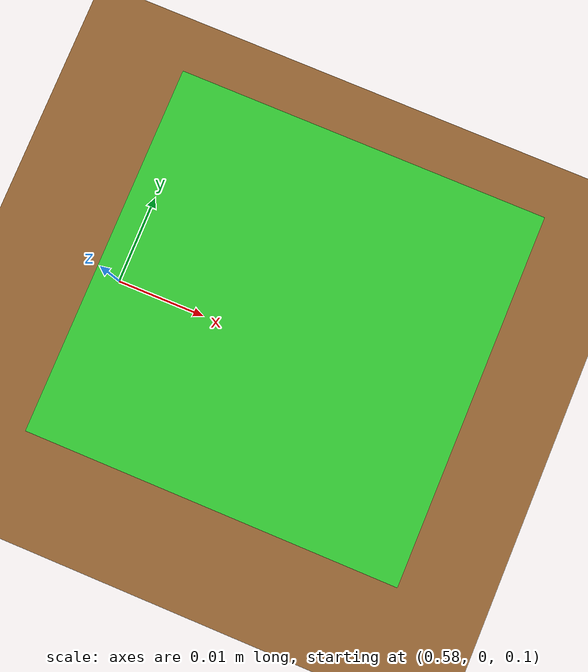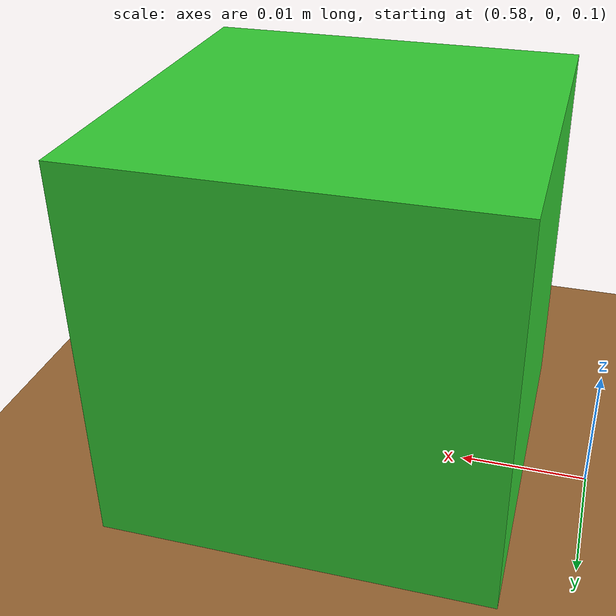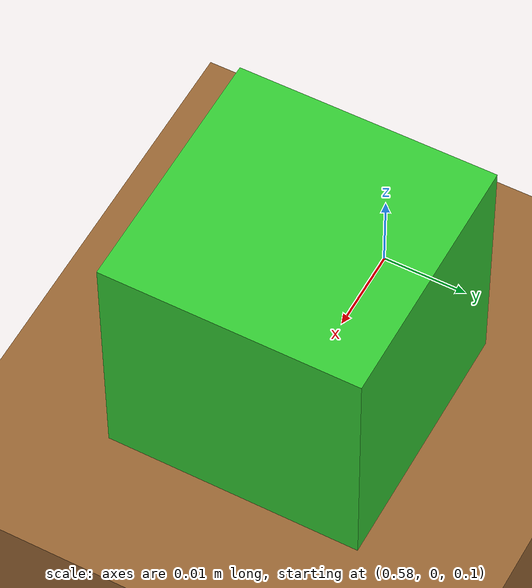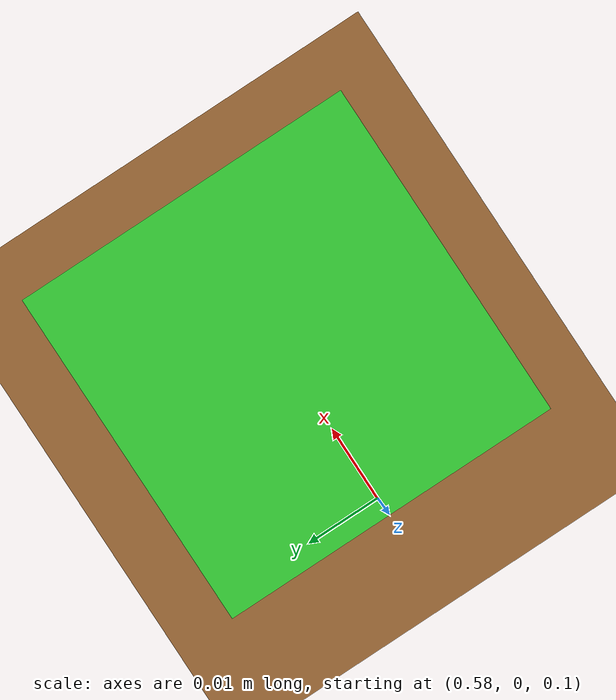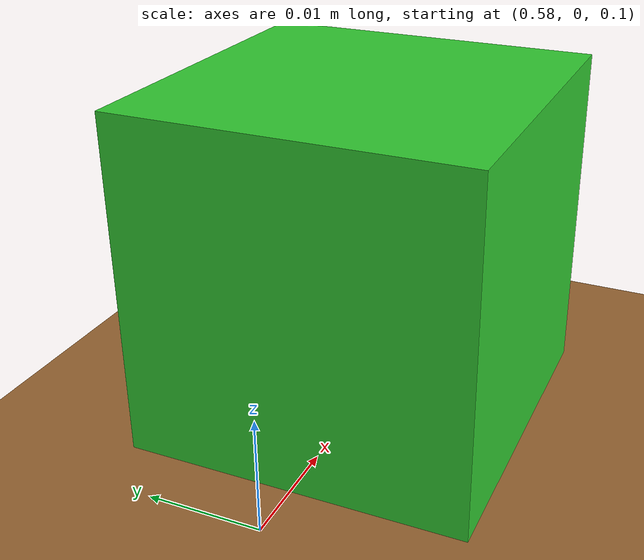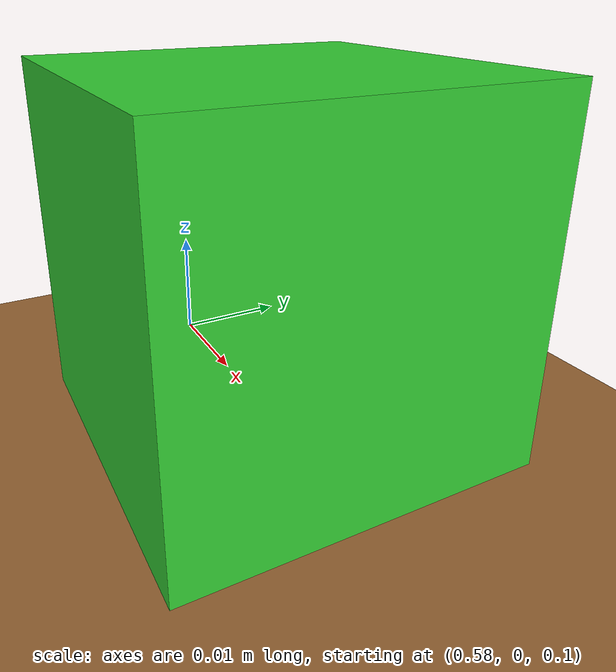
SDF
<?xml version="1.0" ?>
<sdf version="1.10">
  <world name="grasp_world">
    <!-- 物理引擎：bullet-featherstone（曾按"支持 mimic"的预期选用；实测当前软件栈无引擎可用 mimic，见 docs/夹爪单指运动问题修复记录.md，引擎保留即可）-->
    <physics name="1ms" type="bullet-featherstone">
      <max_step_size>0.001</max_step_size>
      <real_time_factor>1.0</real_time_factor>
    </physics>

    <gui fullscreen="0">
      <camera name="user_camera">
        <pose>2.0 -2.0 1.5 0 0.5 2.3</pose>
        <view_controller>Orbit</view_controller>
      </camera>
    </gui>

    <light type="directional" name="sun">
      <cast_shadows>true</cast_shadows>
      <pose>0 0 10 0 0 0</pose>
      <diffuse>0.8 0.8 0.8 1</diffuse>
      <specular>0.2 0.2 0.2 1</specular>
      <direction>-0.5 0.1 -0.9</direction>
    </light>

    <model name="ground_plane">
      <static>true</static>
      <link name="link">
        <collision name="collision">
          <geometry>
            <plane>
              <normal>0 0 1</normal>
              <size>10 10</size>
            </plane>
          </geometry>
        </collision>
        <visual name="visual">
          <geometry>
            <plane>
              <normal>0 0 1</normal>
              <size>10 10</size>
            </plane>
          </geometry>
          <material>
            <ambient>0.3 0.3 0.3 1</ambient>
            <diffuse>0.7 0.7 0.7 1</diffuse>
          </material>
        </visual>
      </link>
    </model>
    <!-- 桌面 -->
    <model name="table">
      <static>true</static>
      <pose>0.5 0 0.05 0 0 0</pose>
      <link name="link">
        <collision name="collision">
          <geometry>
            <box>
              <size>2.0 2.0 0.1</size>
            </box>
          </geometry>
        </collision>
        <visual name="visual">
          <geometry>
            <box>
              <size>2.0 2.0 0.1</size>
            </box>
          </geometry>
          <material>
            <ambient>0.6 0.4 0.2 1</ambient>
            <diffuse>0.6 0.4 0.2 1</diffuse>
          </material>
        </visual>
      </link>
    </model>
    <!-- 抓取物体 物体 z = 桌面中心 z + 桌面半厚 + 物体半高-->
    <model name="grasp_object">
      <static>false</static>
      <pose>0.6 0 0.115 0 0 0</pose>
      <link name="link">
        <inertial>
          <mass>0.02</mass>
          <inertia>
            <ixx>0.000003</ixx>
            <iyy>0.000003</iyy>
            <izz>0.000003</izz>
            <ixy>0</ixy>
            <ixz>0</ixz>
            <iyz>0</iyz>
          </inertia>
        </inertial>
        <collision name="collision">
          <geometry>
            <box>
              <size>0.03 0.03 0.03</size>
            </box>
          </geometry>
          <surface>
            <friction>
              <ode>
                <mu>1.0</mu>
                <mu2>1.0</mu2>
              </ode>
            </friction>
          </surface>
        </collision>
        <visual name="visual">
          <geometry>
            <box>
              <size>0.03 0.03 0.03</size>
            </box>
          </geometry>
          <material>
            <ambient>0.2 0.6 0.2 1</ambient>
            <diffuse>0.2 0.8 0.2 1</diffuse>
          </material>
        </visual>
      </link>
    </model>
  </world>
</sdf>
